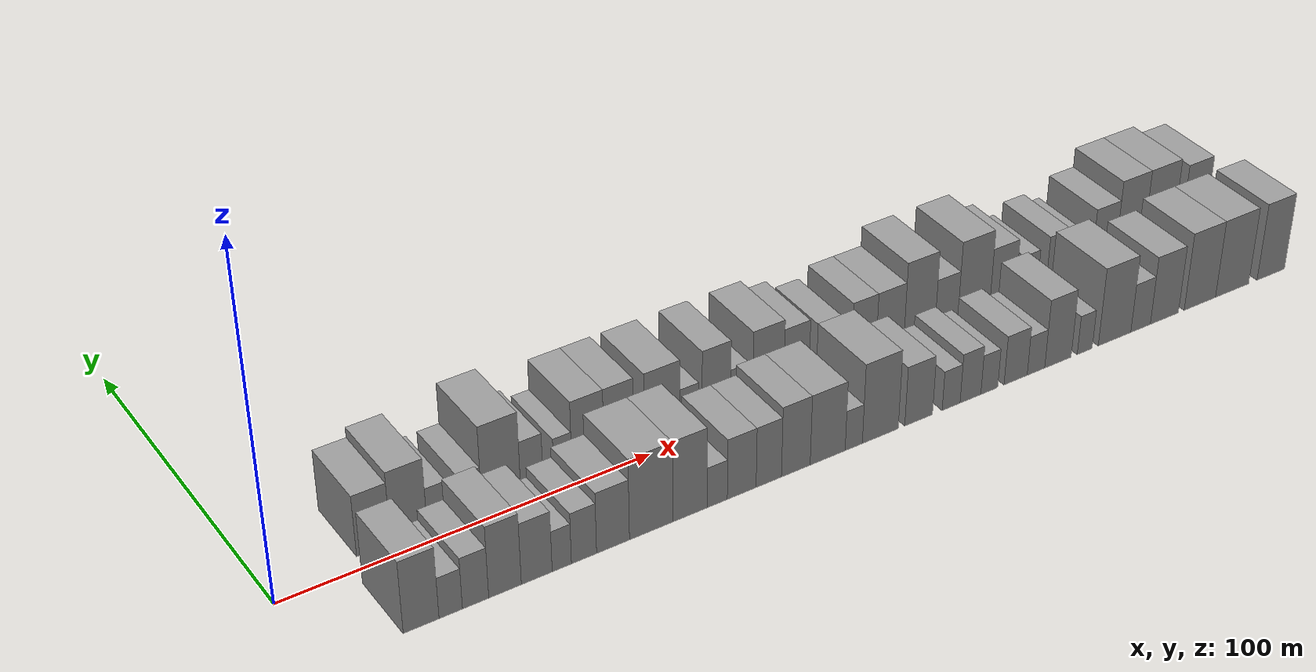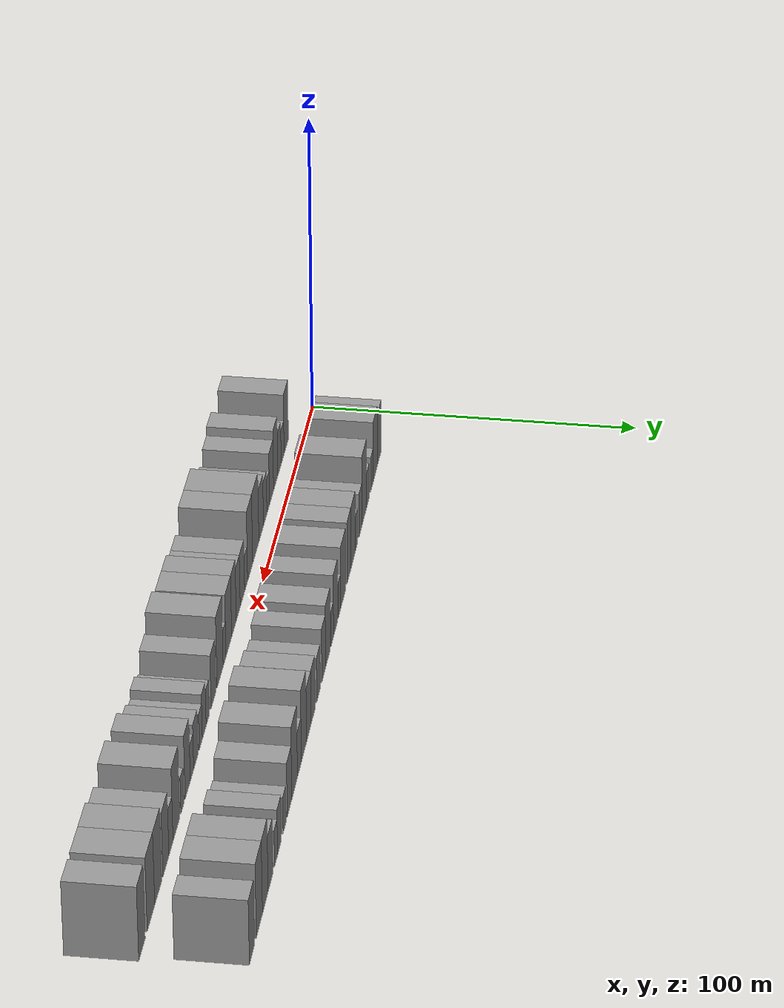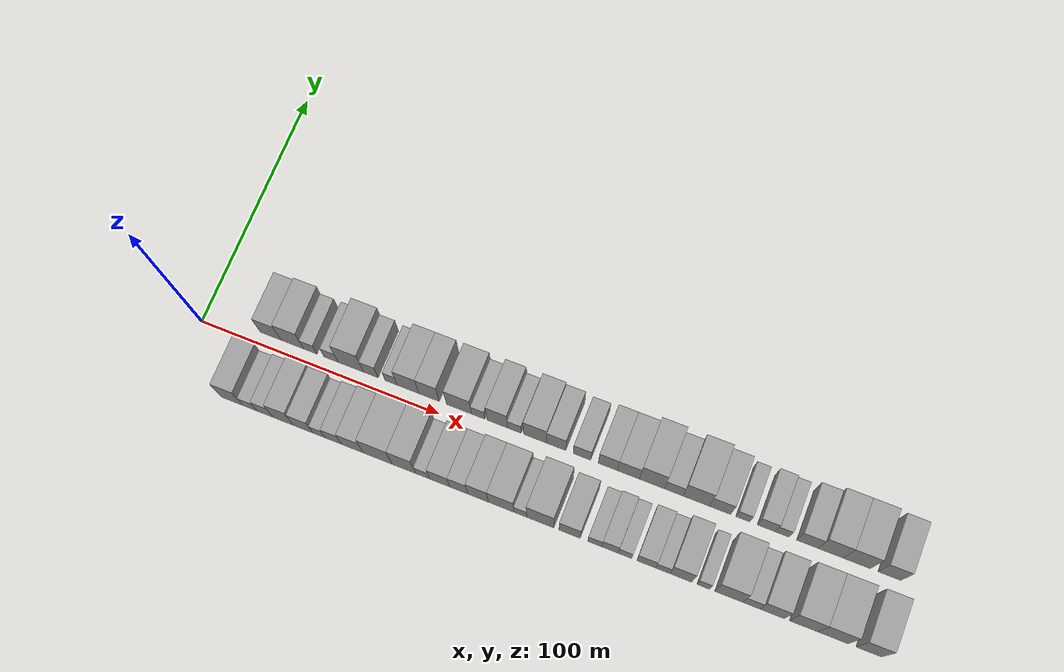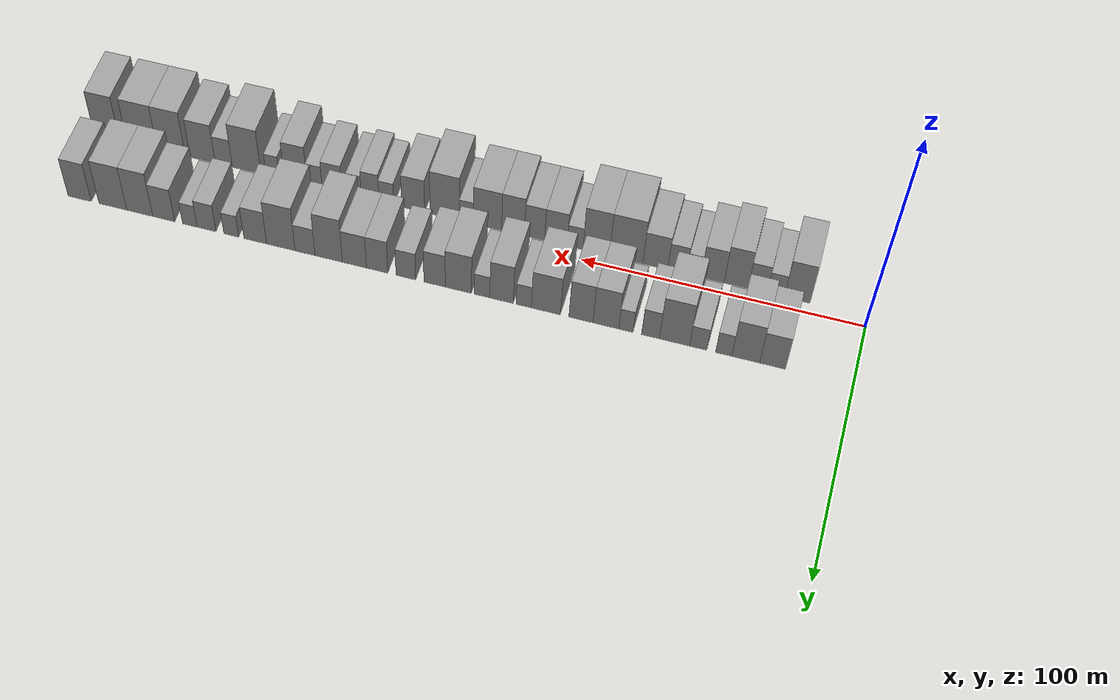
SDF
<sdf version="1.6">
 <world name="default">
  <scene>
   <sky><clouds><speed>12</speed></clouds></sky>
   <ambient>0.4 0.4 0.4 1</ambient>
   <background>0.7 0.7 0.7 1</background>
   <shadows>1</shadows>
  </scene>
  <gravity>0 0 -9.8066</gravity>
  <magnetic_field>6e-06 2.3e-05 -4.2e-05</magnetic_field>
  <physics default="0" name="default_physics" type="ode">
   <ode>
    <solver>
     <type>quick</type>
     <iters>10</iters>
     <sor>1.0</sor>
     <use_dynamic_moi_rescaling>0</use_dynamic_moi_rescaling>
    </solver>
    <constraints>
     <cfm>0</cfm>
     <erp>0.2</erp>
     <contact_max_correcting_vel>100</contact_max_correcting_vel>
     <contact_surface_layer>0.001</contact_surface_layer>
    </constraints>
   </ode>
   <max_step_size>0.004</max_step_size>
   <real_time_factor>1</real_time_factor>
   <real_time_update_rate>250</real_time_update_rate>
  </physics>
  <light name="sun" type="directional">
   <pose>0 0 10 0 0 0</pose>
   <diffuse>0.8 0.8 0.8 1</diffuse>
   <specular>0.2 0.2 0.2 1</specular>
   <attenuation>
    <range>1000</range>
    <constant>0.9</constant>
    <linear>0.01</linear>
    <quadratic>0.001</quadratic>
   </attenuation>
   <direction>-0.5 0.1 -0.9</direction>
  </light>
  <model name="building_1">
   <static>1</static>
   <pose>27.4178 14.5000 0 0.000000 0.000000 1.570796</pose>
   <link name="link">
    <pose>0 0 9.00 0 0 0</pose>
    <collision name="collision"><geometry><box><size>20.0000 8.8357 18.0000</size></box></geometry></collision>
    <visual name="visual">
     <cast_shadows>0</cast_shadows>
     <geometry><box><size>20.0000 8.8357 18.0000</size></box></geometry>
     <material>
      <script>
       <uri>model://grey_wall/materials/scripts</uri>
       <uri>model://grey_wall/materials/textures</uri>
       <name>vrc/grey_wall</name>
      </script>
     </material>
    </visual>
   </link>
  </model>
  <model name="building_2">
   <static>1</static>
   <pose>36.6209 14.5000 0 0.000000 0.000000 1.570796</pose>
   <link name="link">
    <pose>0 0 10.50 0 0 0</pose>
    <collision name="collision"><geometry><box><size>20.0000 9.5705 21.0000</size></box></geometry></collision>
    <visual name="visual">
     <cast_shadows>0</cast_shadows>
     <geometry><box><size>20.0000 9.5705 21.0000</size></box></geometry>
     <material>
      <script>
       <uri>model://grey_wall/materials/scripts</uri>
       <uri>model://grey_wall/materials/textures</uri>
       <name>vrc/grey_wall</name>
      </script>
     </material>
    </visual>
   </link>
  </model>
  <model name="building_3">
   <static>1</static>
   <pose>44.1888 14.5000 0 0.000000 0.000000 1.570796</pose>
   <link name="link">
    <pose>0 0 6.00 0 0 0</pose>
    <collision name="collision"><geometry><box><size>20.0000 5.5652 12.0000</size></box></geometry></collision>
    <visual name="visual">
     <cast_shadows>0</cast_shadows>
     <geometry><box><size>20.0000 5.5652 12.0000</size></box></geometry>
     <material>
      <script>
       <uri>model://grey_wall/materials/scripts</uri>
       <uri>model://grey_wall/materials/textures</uri>
       <name>vrc/grey_wall</name>
      </script>
     </material>
    </visual>
   </link>
  </model>
  <model name="building_4">
   <static>1</static>
   <pose>52.9633 14.5000 0 0.000000 0.000000 1.570796</pose>
   <link name="link">
    <pose>0 0 6.00 0 0 0</pose>
    <collision name="collision"><geometry><box><size>20.0000 5.9837 12.0000</size></box></geometry></collision>
    <visual name="visual">
     <cast_shadows>0</cast_shadows>
     <geometry><box><size>20.0000 5.9837 12.0000</size></box></geometry>
     <material>
      <script>
       <uri>model://grey_wall/materials/scripts</uri>
       <uri>model://grey_wall/materials/textures</uri>
       <name>vrc/grey_wall</name>
      </script>
     </material>
    </visual>
   </link>
  </model>
  <model name="building_5">
   <static>1</static>
   <pose>61.2303 14.5000 0 0.000000 0.000000 1.570796</pose>
   <link name="link">
    <pose>0 0 12.00 0 0 0</pose>
    <collision name="collision"><geometry><box><size>20.0000 10.5504 24.0000</size></box></geometry></collision>
    <visual name="visual">
     <cast_shadows>0</cast_shadows>
     <geometry><box><size>20.0000 10.5504 24.0000</size></box></geometry>
     <material>
      <script>
       <uri>model://grey_wall/materials/scripts</uri>
       <uri>model://grey_wall/materials/textures</uri>
       <name>vrc/grey_wall</name>
      </script>
     </material>
    </visual>
   </link>
  </model>
  <model name="building_6">
   <static>1</static>
   <pose>69.5899 14.5000 0 0.000000 0.000000 1.570796</pose>
   <link name="link">
    <pose>0 0 7.50 0 0 0</pose>
    <collision name="collision"><geometry><box><size>20.0000 6.1688 15.0000</size></box></geometry></collision>
    <visual name="visual">
     <cast_shadows>0</cast_shadows>
     <geometry><box><size>20.0000 6.1688 15.0000</size></box></geometry>
     <material>
      <script>
       <uri>model://grey_wall/materials/scripts</uri>
       <uri>model://grey_wall/materials/textures</uri>
       <name>vrc/grey_wall</name>
      </script>
     </material>
    </visual>
   </link>
  </model>
  <model name="building_7">
   <static>1</static>
   <pose>78.1745 14.5000 0 0.000000 0.000000 1.570796</pose>
   <link name="link">
    <pose>0 0 6.00 0 0 0</pose>
    <collision name="collision"><geometry><box><size>20.0000 5.0002 12.0000</size></box></geometry></collision>
    <visual name="visual">
     <cast_shadows>0</cast_shadows>
     <geometry><box><size>20.0000 5.0002 12.0000</size></box></geometry>
     <material>
      <script>
       <uri>model://grey_wall/materials/scripts</uri>
       <uri>model://grey_wall/materials/textures</uri>
       <name>vrc/grey_wall</name>
      </script>
     </material>
    </visual>
   </link>
  </model>
  <model name="building_8">
   <static>1</static>
   <pose>85.1976 14.5000 0 0.000000 0.000000 1.570796</pose>
   <link name="link">
    <pose>0 0 10.50 0 0 0</pose>
    <collision name="collision"><geometry><box><size>20.0000 9.0461 21.0000</size></box></geometry></collision>
    <visual name="visual">
     <cast_shadows>0</cast_shadows>
     <geometry><box><size>20.0000 9.0461 21.0000</size></box></geometry>
     <material>
      <script>
       <uri>model://grey_wall/materials/scripts</uri>
       <uri>model://grey_wall/materials/textures</uri>
       <name>vrc/grey_wall</name>
      </script>
     </material>
    </visual>
   </link>
  </model>
  <model name="building_9">
   <static>1</static>
   <pose>93.9583 14.5000 0 0.000000 0.000000 1.570796</pose>
   <link name="link">
    <pose>0 0 10.50 0 0 0</pose>
    <collision name="collision"><geometry><box><size>20.0000 8.4753 21.0000</size></box></geometry></collision>
    <visual name="visual">
     <cast_shadows>0</cast_shadows>
     <geometry><box><size>20.0000 8.4753 21.0000</size></box></geometry>
     <material>
      <script>
       <uri>model://grey_wall/materials/scripts</uri>
       <uri>model://grey_wall/materials/textures</uri>
       <name>vrc/grey_wall</name>
      </script>
     </material>
    </visual>
   </link>
  </model>
  <model name="building_10">
   <static>1</static>
   <pose>106.3749 14.5000 0 0.000000 0.000000 1.570796</pose>
   <link name="link">
    <pose>0 0 10.50 0 0 0</pose>
    <collision name="collision"><geometry><box><size>20.0000 10.3579 21.0000</size></box></geometry></collision>
    <visual name="visual">
     <cast_shadows>0</cast_shadows>
     <geometry><box><size>20.0000 10.3579 21.0000</size></box></geometry>
     <material>
      <script>
       <uri>model://grey_wall/materials/scripts</uri>
       <uri>model://grey_wall/materials/textures</uri>
       <name>vrc/grey_wall</name>
      </script>
     </material>
    </visual>
   </link>
  </model>
  <model name="building_11">
   <static>1</static>
   <pose>114.2627 14.5000 0 0.000000 0.000000 1.570796</pose>
   <link name="link">
    <pose>0 0 6.00 0 0 0</pose>
    <collision name="collision"><geometry><box><size>20.0000 5.4176 12.0000</size></box></geometry></collision>
    <visual name="visual">
     <cast_shadows>0</cast_shadows>
     <geometry><box><size>20.0000 5.4176 12.0000</size></box></geometry>
     <material>
      <script>
       <uri>model://grey_wall/materials/scripts</uri>
       <uri>model://grey_wall/materials/textures</uri>
       <name>vrc/grey_wall</name>
      </script>
     </material>
    </visual>
   </link>
  </model>
  <model name="building_12">
   <static>1</static>
   <pose>122.1870 14.5000 0 0.000000 0.000000 1.570796</pose>
   <link name="link">
    <pose>0 0 10.50 0 0 0</pose>
    <collision name="collision"><geometry><box><size>20.0000 8.4310 21.0000</size></box></geometry></collision>
    <visual name="visual">
     <cast_shadows>0</cast_shadows>
     <geometry><box><size>20.0000 8.4310 21.0000</size></box></geometry>
     <material>
      <script>
       <uri>model://grey_wall/materials/scripts</uri>
       <uri>model://grey_wall/materials/textures</uri>
       <name>vrc/grey_wall</name>
      </script>
     </material>
    </visual>
   </link>
  </model>
  <model name="building_13">
   <static>1</static>
   <pose>129.1806 14.5000 0 0.000000 0.000000 1.570796</pose>
   <link name="link">
    <pose>0 0 6.00 0 0 0</pose>
    <collision name="collision"><geometry><box><size>20.0000 5.5562 12.0000</size></box></geometry></collision>
    <visual name="visual">
     <cast_shadows>0</cast_shadows>
     <geometry><box><size>20.0000 5.5562 12.0000</size></box></geometry>
     <material>
      <script>
       <uri>model://grey_wall/materials/scripts</uri>
       <uri>model://grey_wall/materials/textures</uri>
       <name>vrc/grey_wall</name>
      </script>
     </material>
    </visual>
   </link>
  </model>
  <model name="building_14">
   <static>1</static>
   <pose>137.6740 14.5000 0 0.000000 0.000000 1.570796</pose>
   <link name="link">
    <pose>0 0 10.50 0 0 0</pose>
    <collision name="collision"><geometry><box><size>20.0000 9.4306 21.0000</size></box></geometry></collision>
    <visual name="visual">
     <cast_shadows>0</cast_shadows>
     <geometry><box><size>20.0000 9.4306 21.0000</size></box></geometry>
     <material>
      <script>
       <uri>model://grey_wall/materials/scripts</uri>
       <uri>model://grey_wall/materials/textures</uri>
       <name>vrc/grey_wall</name>
      </script>
     </material>
    </visual>
   </link>
  </model>
  <model name="building_15">
   <static>1</static>
   <pose>146.2488 14.5000 0 0.000000 0.000000 1.570796</pose>
   <link name="link">
    <pose>0 0 9.00 0 0 0</pose>
    <collision name="collision"><geometry><box><size>20.0000 7.7191 18.0000</size></box></geometry></collision>
    <visual name="visual">
     <cast_shadows>0</cast_shadows>
     <geometry><box><size>20.0000 7.7191 18.0000</size></box></geometry>
     <material>
      <script>
       <uri>model://grey_wall/materials/scripts</uri>
       <uri>model://grey_wall/materials/textures</uri>
       <name>vrc/grey_wall</name>
      </script>
     </material>
    </visual>
   </link>
  </model>
  <model name="building_16">
   <static>1</static>
   <pose>156.6767 14.5000 0 0.000000 0.000000 1.570796</pose>
   <link name="link">
    <pose>0 0 7.50 0 0 0</pose>
    <collision name="collision"><geometry><box><size>20.0000 7.1368 15.0000</size></box></geometry></collision>
    <visual name="visual">
     <cast_shadows>0</cast_shadows>
     <geometry><box><size>20.0000 7.1368 15.0000</size></box></geometry>
     <material>
      <script>
       <uri>model://grey_wall/materials/scripts</uri>
       <uri>model://grey_wall/materials/textures</uri>
       <name>vrc/grey_wall</name>
      </script>
     </material>
    </visual>
   </link>
  </model>
  <model name="building_17">
   <static>1</static>
   <pose>167.1513 14.5000 0 0.000000 0.000000 1.570796</pose>
   <link name="link">
    <pose>0 0 9.00 0 0 0</pose>
    <collision name="collision"><geometry><box><size>20.0000 7.8124 18.0000</size></box></geometry></collision>
    <visual name="visual">
     <cast_shadows>0</cast_shadows>
     <geometry><box><size>20.0000 7.8124 18.0000</size></box></geometry>
     <material>
      <script>
       <uri>model://grey_wall/materials/scripts</uri>
       <uri>model://grey_wall/materials/textures</uri>
       <name>vrc/grey_wall</name>
      </script>
     </material>
    </visual>
   </link>
  </model>
  <model name="building_18">
   <static>1</static>
   <pose>175.4930 14.5000 0 0.000000 0.000000 1.570796</pose>
   <link name="link">
    <pose>0 0 9.00 0 0 0</pose>
    <collision name="collision"><geometry><box><size>20.0000 8.8710 18.0000</size></box></geometry></collision>
    <visual name="visual">
     <cast_shadows>0</cast_shadows>
     <geometry><box><size>20.0000 8.8710 18.0000</size></box></geometry>
     <material>
      <script>
       <uri>model://grey_wall/materials/scripts</uri>
       <uri>model://grey_wall/materials/textures</uri>
       <name>vrc/grey_wall</name>
      </script>
     </material>
    </visual>
   </link>
  </model>
  <model name="building_19">
   <static>1</static>
   <pose>184.9338 14.5000 0 0.000000 0.000000 1.570796</pose>
   <link name="link">
    <pose>0 0 12.00 0 0 0</pose>
    <collision name="collision"><geometry><box><size>20.0000 10.0105 24.0000</size></box></geometry></collision>
    <visual name="visual">
     <cast_shadows>0</cast_shadows>
     <geometry><box><size>20.0000 10.0105 24.0000</size></box></geometry>
     <material>
      <script>
       <uri>model://grey_wall/materials/scripts</uri>
       <uri>model://grey_wall/materials/textures</uri>
       <name>vrc/grey_wall</name>
      </script>
     </material>
    </visual>
   </link>
  </model>
  <model name="building_20">
   <static>1</static>
   <pose>193.6532 14.5000 0 0.000000 0.000000 1.570796</pose>
   <link name="link">
    <pose>0 0 7.50 0 0 0</pose>
    <collision name="collision"><geometry><box><size>20.0000 7.4284 15.0000</size></box></geometry></collision>
    <visual name="visual">
     <cast_shadows>0</cast_shadows>
     <geometry><box><size>20.0000 7.4284 15.0000</size></box></geometry>
     <material>
      <script>
       <uri>model://grey_wall/materials/scripts</uri>
       <uri>model://grey_wall/materials/textures</uri>
       <name>vrc/grey_wall</name>
      </script>
     </material>
    </visual>
   </link>
  </model>
  <model name="building_21">
   <static>1</static>
   <pose>202.6494 14.5000 0 0.000000 0.000000 1.570796</pose>
   <link name="link">
    <pose>0 0 12.00 0 0 0</pose>
    <collision name="collision"><geometry><box><size>20.0000 10.5638 24.0000</size></box></geometry></collision>
    <visual name="visual">
     <cast_shadows>0</cast_shadows>
     <geometry><box><size>20.0000 10.5638 24.0000</size></box></geometry>
     <material>
      <script>
       <uri>model://grey_wall/materials/scripts</uri>
       <uri>model://grey_wall/materials/textures</uri>
       <name>vrc/grey_wall</name>
      </script>
     </material>
    </visual>
   </link>
  </model>
  <model name="building_22">
   <static>1</static>
   <pose>212.1761 14.5000 0 0.000000 0.000000 1.570796</pose>
   <link name="link">
    <pose>0 0 9.00 0 0 0</pose>
    <collision name="collision"><geometry><box><size>20.0000 8.4896 18.0000</size></box></geometry></collision>
    <visual name="visual">
     <cast_shadows>0</cast_shadows>
     <geometry><box><size>20.0000 8.4896 18.0000</size></box></geometry>
     <material>
      <script>
       <uri>model://grey_wall/materials/scripts</uri>
       <uri>model://grey_wall/materials/textures</uri>
       <name>vrc/grey_wall</name>
      </script>
     </material>
    </visual>
   </link>
  </model>
  <model name="building_23">
   <static>1</static>
   <pose>221.1869 14.5000 0 0.000000 0.000000 1.570796</pose>
   <link name="link">
    <pose>0 0 6.00 0 0 0</pose>
    <collision name="collision"><geometry><box><size>20.0000 5.5321 12.0000</size></box></geometry></collision>
    <visual name="visual">
     <cast_shadows>0</cast_shadows>
     <geometry><box><size>20.0000 5.5321 12.0000</size></box></geometry>
     <material>
      <script>
       <uri>model://grey_wall/materials/scripts</uri>
       <uri>model://grey_wall/materials/textures</uri>
       <name>vrc/grey_wall</name>
      </script>
     </material>
    </visual>
   </link>
  </model>
  <model name="building_24">
   <static>1</static>
   <pose>230.4912 14.5000 0 0.000000 0.000000 1.570796</pose>
   <link name="link">
    <pose>0 0 7.50 0 0 0</pose>
    <collision name="collision"><geometry><box><size>20.0000 7.0765 15.0000</size></box></geometry></collision>
    <visual name="visual">
     <cast_shadows>0</cast_shadows>
     <geometry><box><size>20.0000 7.0765 15.0000</size></box></geometry>
     <material>
      <script>
       <uri>model://grey_wall/materials/scripts</uri>
       <uri>model://grey_wall/materials/textures</uri>
       <name>vrc/grey_wall</name>
      </script>
     </material>
    </visual>
   </link>
  </model>
  <model name="building_25">
   <static>1</static>
   <pose>236.7713 14.5000 0 0.000000 0.000000 1.570796</pose>
   <link name="link">
    <pose>0 0 6.00 0 0 0</pose>
    <collision name="collision"><geometry><box><size>20.0000 5.4837 12.0000</size></box></geometry></collision>
    <visual name="visual">
     <cast_shadows>0</cast_shadows>
     <geometry><box><size>20.0000 5.4837 12.0000</size></box></geometry>
     <material>
      <script>
       <uri>model://grey_wall/materials/scripts</uri>
       <uri>model://grey_wall/materials/textures</uri>
       <name>vrc/grey_wall</name>
      </script>
     </material>
    </visual>
   </link>
  </model>
  <model name="building_26">
   <static>1</static>
   <pose>246.6645 14.5000 0 0.000000 0.000000 1.570796</pose>
   <link name="link">
    <pose>0 0 9.00 0 0 0</pose>
    <collision name="collision"><geometry><box><size>20.0000 8.3027 18.0000</size></box></geometry></collision>
    <visual name="visual">
     <cast_shadows>0</cast_shadows>
     <geometry><box><size>20.0000 8.3027 18.0000</size></box></geometry>
     <material>
      <script>
       <uri>model://grey_wall/materials/scripts</uri>
       <uri>model://grey_wall/materials/textures</uri>
       <name>vrc/grey_wall</name>
      </script>
     </material>
    </visual>
   </link>
  </model>
  <model name="building_27">
   <static>1</static>
   <pose>255.7784 14.5000 0 0.000000 0.000000 1.570796</pose>
   <link name="link">
    <pose>0 0 12.00 0 0 0</pose>
    <collision name="collision"><geometry><box><size>20.0000 9.9252 24.0000</size></box></geometry></collision>
    <visual name="visual">
     <cast_shadows>0</cast_shadows>
     <geometry><box><size>20.0000 9.9252 24.0000</size></box></geometry>
     <material>
      <script>
       <uri>model://grey_wall/materials/scripts</uri>
       <uri>model://grey_wall/materials/textures</uri>
       <name>vrc/grey_wall</name>
      </script>
     </material>
    </visual>
   </link>
  </model>
  <model name="building_28">
   <static>1</static>
   <pose>266.0627 14.5000 0 0.000000 0.000000 1.570796</pose>
   <link name="link">
    <pose>0 0 12.00 0 0 0</pose>
    <collision name="collision"><geometry><box><size>20.0000 10.6435 24.0000</size></box></geometry></collision>
    <visual name="visual">
     <cast_shadows>0</cast_shadows>
     <geometry><box><size>20.0000 10.6435 24.0000</size></box></geometry>
     <material>
      <script>
       <uri>model://grey_wall/materials/scripts</uri>
       <uri>model://grey_wall/materials/textures</uri>
       <name>vrc/grey_wall</name>
      </script>
     </material>
    </visual>
   </link>
  </model>
  <model name="building_29">
   <static>1</static>
   <pose>278.8211 14.5000 0 0.000000 0.000000 1.570796</pose>
   <link name="link">
    <pose>0 0 10.50 0 0 0</pose>
    <collision name="collision"><geometry><box><size>20.0000 8.8733 21.0000</size></box></geometry></collision>
    <visual name="visual">
     <cast_shadows>0</cast_shadows>
     <geometry><box><size>20.0000 8.8733 21.0000</size></box></geometry>
     <material>
      <script>
       <uri>model://grey_wall/materials/scripts</uri>
       <uri>model://grey_wall/materials/textures</uri>
       <name>vrc/grey_wall</name>
      </script>
     </material>
    </visual>
   </link>
  </model>
  <model name="building_30">
   <static>1</static>
   <pose>24.5122 -14.5000 0 0.000000 0.000000 1.570796</pose>
   <link name="link">
    <pose>0 0 10.50 0 0 0</pose>
    <collision name="collision"><geometry><box><size>20.0000 9.0244 21.0000</size></box></geometry></collision>
    <visual name="visual">
     <cast_shadows>0</cast_shadows>
     <geometry><box><size>20.0000 9.0244 21.0000</size></box></geometry>
     <material>
      <script>
       <uri>model://grey_wall/materials/scripts</uri>
       <uri>model://grey_wall/materials/textures</uri>
       <name>vrc/grey_wall</name>
      </script>
     </material>
    </visual>
   </link>
  </model>
  <model name="building_31">
   <static>1</static>
   <pose>32.0040 -14.5000 0 0.000000 0.000000 1.570796</pose>
   <link name="link">
    <pose>0 0 6.00 0 0 0</pose>
    <collision name="collision"><geometry><box><size>20.0000 5.9591 12.0000</size></box></geometry></collision>
    <visual name="visual">
     <cast_shadows>0</cast_shadows>
     <geometry><box><size>20.0000 5.9591 12.0000</size></box></geometry>
     <material>
      <script>
       <uri>model://grey_wall/materials/scripts</uri>
       <uri>model://grey_wall/materials/textures</uri>
       <name>vrc/grey_wall</name>
      </script>
     </material>
    </visual>
   </link>
  </model>
  <model name="building_32">
   <static>1</static>
   <pose>38.3561 -14.5000 0 0.000000 0.000000 1.570796</pose>
   <link name="link">
    <pose>0 0 7.50 0 0 0</pose>
    <collision name="collision"><geometry><box><size>20.0000 6.7451 15.0000</size></box></geometry></collision>
    <visual name="visual">
     <cast_shadows>0</cast_shadows>
     <geometry><box><size>20.0000 6.7451 15.0000</size></box></geometry>
     <material>
      <script>
       <uri>model://grey_wall/materials/scripts</uri>
       <uri>model://grey_wall/materials/textures</uri>
       <name>vrc/grey_wall</name>
      </script>
     </material>
    </visual>
   </link>
  </model>
  <model name="building_33">
   <static>1</static>
   <pose>45.9699 -14.5000 0 0.000000 0.000000 1.570796</pose>
   <link name="link">
    <pose>0 0 10.50 0 0 0</pose>
    <collision name="collision"><geometry><box><size>20.0000 8.4825 21.0000</size></box></geometry></collision>
    <visual name="visual">
     <cast_shadows>0</cast_shadows>
     <geometry><box><size>20.0000 8.4825 21.0000</size></box></geometry>
     <material>
      <script>
       <uri>model://grey_wall/materials/scripts</uri>
       <uri>model://grey_wall/materials/textures</uri>
       <name>vrc/grey_wall</name>
      </script>
     </material>
    </visual>
   </link>
  </model>
  <model name="building_34">
   <static>1</static>
   <pose>54.2666 -14.5000 0 0.000000 0.000000 1.570796</pose>
   <link name="link">
    <pose>0 0 9.00 0 0 0</pose>
    <collision name="collision"><geometry><box><size>20.0000 8.1109 18.0000</size></box></geometry></collision>
    <visual name="visual">
     <cast_shadows>0</cast_shadows>
     <geometry><box><size>20.0000 8.1109 18.0000</size></box></geometry>
     <material>
      <script>
       <uri>model://grey_wall/materials/scripts</uri>
       <uri>model://grey_wall/materials/textures</uri>
       <name>vrc/grey_wall</name>
      </script>
     </material>
    </visual>
   </link>
  </model>
  <model name="building_35">
   <static>1</static>
   <pose>60.8791 -14.5000 0 0.000000 0.000000 1.570796</pose>
   <link name="link">
    <pose>0 0 6.00 0 0 0</pose>
    <collision name="collision"><geometry><box><size>20.0000 5.1141 12.0000</size></box></geometry></collision>
    <visual name="visual">
     <cast_shadows>0</cast_shadows>
     <geometry><box><size>20.0000 5.1141 12.0000</size></box></geometry>
     <material>
      <script>
       <uri>model://grey_wall/materials/scripts</uri>
       <uri>model://grey_wall/materials/textures</uri>
       <name>vrc/grey_wall</name>
      </script>
     </material>
    </visual>
   </link>
  </model>
  <model name="building_36">
   <static>1</static>
   <pose>66.8075 -14.5000 0 0.000000 0.000000 1.570796</pose>
   <link name="link">
    <pose>0 0 7.50 0 0 0</pose>
    <collision name="collision"><geometry><box><size>20.0000 6.7426 15.0000</size></box></geometry></collision>
    <visual name="visual">
     <cast_shadows>0</cast_shadows>
     <geometry><box><size>20.0000 6.7426 15.0000</size></box></geometry>
     <material>
      <script>
       <uri>model://grey_wall/materials/scripts</uri>
       <uri>model://grey_wall/materials/textures</uri>
       <name>vrc/grey_wall</name>
      </script>
     </material>
    </visual>
   </link>
  </model>
  <model name="building_37">
   <static>1</static>
   <pose>74.6391 -14.5000 0 0.000000 0.000000 1.570796</pose>
   <link name="link">
    <pose>0 0 9.00 0 0 0</pose>
    <collision name="collision"><geometry><box><size>20.0000 8.9207 18.0000</size></box></geometry></collision>
    <visual name="visual">
     <cast_shadows>0</cast_shadows>
     <geometry><box><size>20.0000 8.9207 18.0000</size></box></geometry>
     <material>
      <script>
       <uri>model://grey_wall/materials/scripts</uri>
       <uri>model://grey_wall/materials/textures</uri>
       <name>vrc/grey_wall</name>
      </script>
     </material>
    </visual>
   </link>
  </model>
  <model name="building_38">
   <static>1</static>
   <pose>85.0779 -14.5000 0 0.000000 0.000000 1.570796</pose>
   <link name="link">
    <pose>0 0 12.00 0 0 0</pose>
    <collision name="collision"><geometry><box><size>20.0000 11.9569 24.0000</size></box></geometry></collision>
    <visual name="visual">
     <cast_shadows>0</cast_shadows>
     <geometry><box><size>20.0000 11.9569 24.0000</size></box></geometry>
     <material>
      <script>
       <uri>model://grey_wall/materials/scripts</uri>
       <uri>model://grey_wall/materials/textures</uri>
       <name>vrc/grey_wall</name>
      </script>
     </material>
    </visual>
   </link>
  </model>
  <model name="building_39">
   <static>1</static>
   <pose>95.8706 -14.5000 0 0.000000 0.000000 1.570796</pose>
   <link name="link">
    <pose>0 0 12.00 0 0 0</pose>
    <collision name="collision"><geometry><box><size>20.0000 9.6284 24.0000</size></box></geometry></collision>
    <visual name="visual">
     <cast_shadows>0</cast_shadows>
     <geometry><box><size>20.0000 9.6284 24.0000</size></box></geometry>
     <material>
      <script>
       <uri>model://grey_wall/materials/scripts</uri>
       <uri>model://grey_wall/materials/textures</uri>
       <name>vrc/grey_wall</name>
      </script>
     </material>
    </visual>
   </link>
  </model>
  <model name="building_40">
   <static>1</static>
   <pose>103.5165 -14.5000 0 0.000000 0.000000 1.570796</pose>
   <link name="link">
    <pose>0 0 6.00 0 0 0</pose>
    <collision name="collision"><geometry><box><size>20.0000 5.6634 12.0000</size></box></geometry></collision>
    <visual name="visual">
     <cast_shadows>0</cast_shadows>
     <geometry><box><size>20.0000 5.6634 12.0000</size></box></geometry>
     <material>
      <script>
       <uri>model://grey_wall/materials/scripts</uri>
       <uri>model://grey_wall/materials/textures</uri>
       <name>vrc/grey_wall</name>
      </script>
     </material>
    </visual>
   </link>
  </model>
  <model name="building_41">
   <static>1</static>
   <pose>110.4604 -14.5000 0 0.000000 0.000000 1.570796</pose>
   <link name="link">
    <pose>0 0 9.00 0 0 0</pose>
    <collision name="collision"><geometry><box><size>20.0000 8.2245 18.0000</size></box></geometry></collision>
    <visual name="visual">
     <cast_shadows>0</cast_shadows>
     <geometry><box><size>20.0000 8.2245 18.0000</size></box></geometry>
     <material>
      <script>
       <uri>model://grey_wall/materials/scripts</uri>
       <uri>model://grey_wall/materials/textures</uri>
       <name>vrc/grey_wall</name>
      </script>
     </material>
    </visual>
   </link>
  </model>
  <model name="building_42">
   <static>1</static>
   <pose>118.2352 -14.5000 0 0.000000 0.000000 1.570796</pose>
   <link name="link">
    <pose>0 0 9.00 0 0 0</pose>
    <collision name="collision"><geometry><box><size>20.0000 7.3251 18.0000</size></box></geometry></collision>
    <visual name="visual">
     <cast_shadows>0</cast_shadows>
     <geometry><box><size>20.0000 7.3251 18.0000</size></box></geometry>
     <material>
      <script>
       <uri>model://grey_wall/materials/scripts</uri>
       <uri>model://grey_wall/materials/textures</uri>
       <name>vrc/grey_wall</name>
      </script>
     </material>
    </visual>
   </link>
  </model>
  <model name="building_43">
   <static>1</static>
   <pose>126.1006 -14.5000 0 0.000000 0.000000 1.570796</pose>
   <link name="link">
    <pose>0 0 10.50 0 0 0</pose>
    <collision name="collision"><geometry><box><size>20.0000 8.4057 21.0000</size></box></geometry></collision>
    <visual name="visual">
     <cast_shadows>0</cast_shadows>
     <geometry><box><size>20.0000 8.4057 21.0000</size></box></geometry>
     <material>
      <script>
       <uri>model://grey_wall/materials/scripts</uri>
       <uri>model://grey_wall/materials/textures</uri>
       <name>vrc/grey_wall</name>
      </script>
     </material>
    </visual>
   </link>
  </model>
  <model name="building_44">
   <static>1</static>
   <pose>135.4915 -14.5000 0 0.000000 0.000000 1.570796</pose>
   <link name="link">
    <pose>0 0 10.50 0 0 0</pose>
    <collision name="collision"><geometry><box><size>20.0000 10.3762 21.0000</size></box></geometry></collision>
    <visual name="visual">
     <cast_shadows>0</cast_shadows>
     <geometry><box><size>20.0000 10.3762 21.0000</size></box></geometry>
     <material>
      <script>
       <uri>model://grey_wall/materials/scripts</uri>
       <uri>model://grey_wall/materials/textures</uri>
       <name>vrc/grey_wall</name>
      </script>
     </material>
    </visual>
   </link>
  </model>
  <model name="building_45">
   <static>1</static>
   <pose>143.2517 -14.5000 0 0.000000 0.000000 1.570796</pose>
   <link name="link">
    <pose>0 0 6.00 0 0 0</pose>
    <collision name="collision"><geometry><box><size>20.0000 5.1442 12.0000</size></box></geometry></collision>
    <visual name="visual">
     <cast_shadows>0</cast_shadows>
     <geometry><box><size>20.0000 5.1442 12.0000</size></box></geometry>
     <material>
      <script>
       <uri>model://grey_wall/materials/scripts</uri>
       <uri>model://grey_wall/materials/textures</uri>
       <name>vrc/grey_wall</name>
      </script>
     </material>
    </visual>
   </link>
  </model>
  <model name="building_46">
   <static>1</static>
   <pose>151.2605 -14.5000 0 0.000000 0.000000 1.570796</pose>
   <link name="link">
    <pose>0 0 12.00 0 0 0</pose>
    <collision name="collision"><geometry><box><size>20.0000 10.8733 24.0000</size></box></geometry></collision>
    <visual name="visual">
     <cast_shadows>0</cast_shadows>
     <geometry><box><size>20.0000 10.8733 24.0000</size></box></geometry>
     <material>
      <script>
       <uri>model://grey_wall/materials/scripts</uri>
       <uri>model://grey_wall/materials/textures</uri>
       <name>vrc/grey_wall</name>
      </script>
     </material>
    </visual>
   </link>
  </model>
  <model name="building_47">
   <static>1</static>
   <pose>162.9712 -14.5000 0 0.000000 0.000000 1.570796</pose>
   <link name="link">
    <pose>0 0 9.00 0 0 0</pose>
    <collision name="collision"><geometry><box><size>20.0000 8.5481 18.0000</size></box></geometry></collision>
    <visual name="visual">
     <cast_shadows>0</cast_shadows>
     <geometry><box><size>20.0000 8.5481 18.0000</size></box></geometry>
     <material>
      <script>
       <uri>model://grey_wall/materials/scripts</uri>
       <uri>model://grey_wall/materials/textures</uri>
       <name>vrc/grey_wall</name>
      </script>
     </material>
    </visual>
   </link>
  </model>
  <model name="building_48">
   <static>1</static>
   <pose>173.0440 -14.5000 0 0.000000 0.000000 1.570796</pose>
   <link name="link">
    <pose>0 0 6.00 0 0 0</pose>
    <collision name="collision"><geometry><box><size>20.0000 5.5976 12.0000</size></box></geometry></collision>
    <visual name="visual">
     <cast_shadows>0</cast_shadows>
     <geometry><box><size>20.0000 5.5976 12.0000</size></box></geometry>
     <material>
      <script>
       <uri>model://grey_wall/materials/scripts</uri>
       <uri>model://grey_wall/materials/textures</uri>
       <name>vrc/grey_wall</name>
      </script>
     </material>
    </visual>
   </link>
  </model>
  <model name="building_49">
   <static>1</static>
   <pose>179.1113 -14.5000 0 0.000000 0.000000 1.570796</pose>
   <link name="link">
    <pose>0 0 7.50 0 0 0</pose>
    <collision name="collision"><geometry><box><size>20.0000 6.5370 15.0000</size></box></geometry></collision>
    <visual name="visual">
     <cast_shadows>0</cast_shadows>
     <geometry><box><size>20.0000 6.5370 15.0000</size></box></geometry>
     <material>
      <script>
       <uri>model://grey_wall/materials/scripts</uri>
       <uri>model://grey_wall/materials/textures</uri>
       <name>vrc/grey_wall</name>
      </script>
     </material>
    </visual>
   </link>
  </model>
  <model name="building_50">
   <static>1</static>
   <pose>185.0660 -14.5000 0 0.000000 0.000000 1.570796</pose>
   <link name="link">
    <pose>0 0 6.00 0 0 0</pose>
    <collision name="collision"><geometry><box><size>20.0000 5.3723 12.0000</size></box></geometry></collision>
    <visual name="visual">
     <cast_shadows>0</cast_shadows>
     <geometry><box><size>20.0000 5.3723 12.0000</size></box></geometry>
     <material>
      <script>
       <uri>model://grey_wall/materials/scripts</uri>
       <uri>model://grey_wall/materials/textures</uri>
       <name>vrc/grey_wall</name>
      </script>
     </material>
    </visual>
   </link>
  </model>
  <model name="building_51">
   <static>1</static>
   <pose>193.4697 -14.5000 0 0.000000 0.000000 1.570796</pose>
   <link name="link">
    <pose>0 0 7.50 0 0 0</pose>
    <collision name="collision"><geometry><box><size>20.0000 7.4351 15.0000</size></box></geometry></collision>
    <visual name="visual">
     <cast_shadows>0</cast_shadows>
     <geometry><box><size>20.0000 7.4351 15.0000</size></box></geometry>
     <material>
      <script>
       <uri>model://grey_wall/materials/scripts</uri>
       <uri>model://grey_wall/materials/textures</uri>
       <name>vrc/grey_wall</name>
      </script>
     </material>
    </visual>
   </link>
  </model>
  <model name="building_52">
   <static>1</static>
   <pose>200.0242 -14.5000 0 0.000000 0.000000 1.570796</pose>
   <link name="link">
    <pose>0 0 6.00 0 0 0</pose>
    <collision name="collision"><geometry><box><size>20.0000 5.6741 12.0000</size></box></geometry></collision>
    <visual name="visual">
     <cast_shadows>0</cast_shadows>
     <geometry><box><size>20.0000 5.6741 12.0000</size></box></geometry>
     <material>
      <script>
       <uri>model://grey_wall/materials/scripts</uri>
       <uri>model://grey_wall/materials/textures</uri>
       <name>vrc/grey_wall</name>
      </script>
     </material>
    </visual>
   </link>
  </model>
  <model name="building_53">
   <static>1</static>
   <pose>207.1907 -14.5000 0 0.000000 0.000000 1.570796</pose>
   <link name="link">
    <pose>0 0 10.50 0 0 0</pose>
    <collision name="collision"><geometry><box><size>20.0000 8.6587 21.0000</size></box></geometry></collision>
    <visual name="visual">
     <cast_shadows>0</cast_shadows>
     <geometry><box><size>20.0000 8.6587 21.0000</size></box></geometry>
     <material>
      <script>
       <uri>model://grey_wall/materials/scripts</uri>
       <uri>model://grey_wall/materials/textures</uri>
       <name>vrc/grey_wall</name>
      </script>
     </material>
    </visual>
   </link>
  </model>
  <model name="building_54">
   <static>1</static>
   <pose>216.0102 -14.5000 0 0.000000 0.000000 1.570796</pose>
   <link name="link">
    <pose>0 0 6.00 0 0 0</pose>
    <collision name="collision"><geometry><box><size>20.0000 4.9803 12.0000</size></box></geometry></collision>
    <visual name="visual">
     <cast_shadows>0</cast_shadows>
     <geometry><box><size>20.0000 4.9803 12.0000</size></box></geometry>
     <material>
      <script>
       <uri>model://grey_wall/materials/scripts</uri>
       <uri>model://grey_wall/materials/textures</uri>
       <name>vrc/grey_wall</name>
      </script>
     </material>
    </visual>
   </link>
  </model>
  <model name="building_55">
   <static>1</static>
   <pose>225.9663 -14.5000 0 0.000000 0.000000 1.570796</pose>
   <link name="link">
    <pose>0 0 12.00 0 0 0</pose>
    <collision name="collision"><geometry><box><size>20.0000 10.9320 24.0000</size></box></geometry></collision>
    <visual name="visual">
     <cast_shadows>0</cast_shadows>
     <geometry><box><size>20.0000 10.9320 24.0000</size></box></geometry>
     <material>
      <script>
       <uri>model://grey_wall/materials/scripts</uri>
       <uri>model://grey_wall/materials/textures</uri>
       <name>vrc/grey_wall</name>
      </script>
     </material>
    </visual>
   </link>
  </model>
  <model name="building_56">
   <static>1</static>
   <pose>234.7509 -14.5000 0 0.000000 0.000000 1.570796</pose>
   <link name="link">
    <pose>0 0 7.50 0 0 0</pose>
    <collision name="collision"><geometry><box><size>20.0000 6.6372 15.0000</size></box></geometry></collision>
    <visual name="visual">
     <cast_shadows>0</cast_shadows>
     <geometry><box><size>20.0000 6.6372 15.0000</size></box></geometry>
     <material>
      <script>
       <uri>model://grey_wall/materials/scripts</uri>
       <uri>model://grey_wall/materials/textures</uri>
       <name>vrc/grey_wall</name>
      </script>
     </material>
    </visual>
   </link>
  </model>
  <model name="building_57">
   <static>1</static>
   <pose>242.8793 -14.5000 0 0.000000 0.000000 1.570796</pose>
   <link name="link">
    <pose>0 0 10.50 0 0 0</pose>
    <collision name="collision"><geometry><box><size>20.0000 9.6196 21.0000</size></box></geometry></collision>
    <visual name="visual">
     <cast_shadows>0</cast_shadows>
     <geometry><box><size>20.0000 9.6196 21.0000</size></box></geometry>
     <material>
      <script>
       <uri>model://grey_wall/materials/scripts</uri>
       <uri>model://grey_wall/materials/textures</uri>
       <name>vrc/grey_wall</name>
      </script>
     </material>
    </visual>
   </link>
  </model>
  <model name="building_58">
   <static>1</static>
   <pose>255.1526 -14.5000 0 0.000000 0.000000 1.570796</pose>
   <link name="link">
    <pose>0 0 12.00 0 0 0</pose>
    <collision name="collision"><geometry><box><size>20.0000 10.9271 24.0000</size></box></geometry></collision>
    <visual name="visual">
     <cast_shadows>0</cast_shadows>
     <geometry><box><size>20.0000 10.9271 24.0000</size></box></geometry>
     <material>
      <script>
       <uri>model://grey_wall/materials/scripts</uri>
       <uri>model://grey_wall/materials/textures</uri>
       <name>vrc/grey_wall</name>
      </script>
     </material>
    </visual>
   </link>
  </model>
  <model name="building_59">
   <static>1</static>
   <pose>266.4928 -14.5000 0 0.000000 0.000000 1.570796</pose>
   <link name="link">
    <pose>0 0 12.00 0 0 0</pose>
    <collision name="collision"><geometry><box><size>20.0000 11.7532 24.0000</size></box></geometry></collision>
    <visual name="visual">
     <cast_shadows>0</cast_shadows>
     <geometry><box><size>20.0000 11.7532 24.0000</size></box></geometry>
     <material>
      <script>
       <uri>model://grey_wall/materials/scripts</uri>
       <uri>model://grey_wall/materials/textures</uri>
       <name>vrc/grey_wall</name>
      </script>
     </material>
    </visual>
   </link>
  </model>
  <model name="building_60">
   <static>1</static>
   <pose>280.3102 -14.5000 0 0.000000 0.000000 1.570796</pose>
   <link name="link">
    <pose>0 0 12.00 0 0 0</pose>
    <collision name="collision"><geometry><box><size>20.0000 9.8816 24.0000</size></box></geometry></collision>
    <visual name="visual">
     <cast_shadows>0</cast_shadows>
     <geometry><box><size>20.0000 9.8816 24.0000</size></box></geometry>
     <material>
      <script>
       <uri>model://grey_wall/materials/scripts</uri>
       <uri>model://grey_wall/materials/textures</uri>
       <name>vrc/grey_wall</name>
      </script>
     </material>
    </visual>
   </link>
  </model>
 </world>
</sdf>
